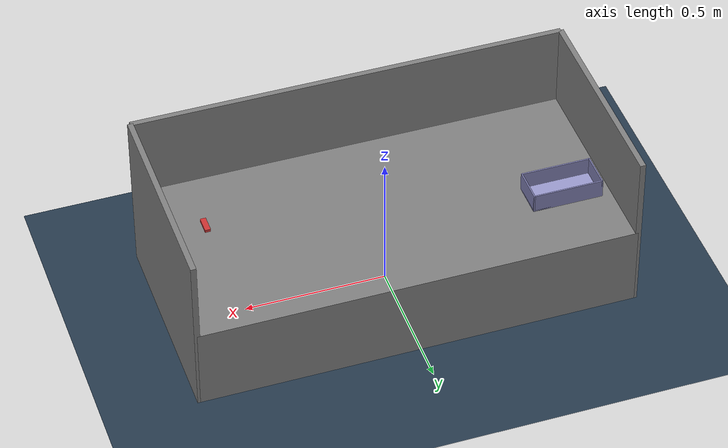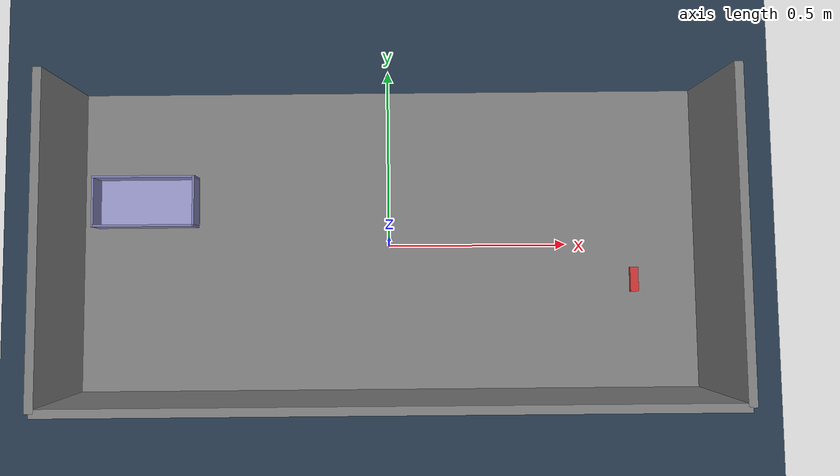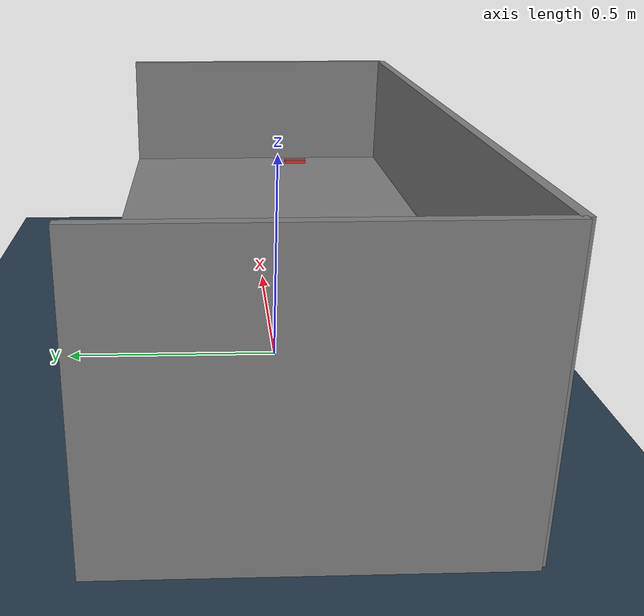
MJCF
<mujoco>
    <compiler angle="radian" meshdir="assets" autolimits="true" texturedir="assets" balanceinertia="true" />
    <option gravity="0 0 -9.81" />

    <visual>
        <headlight diffuse="0.6 0.6 0.6" ambient="0.1 0.1 0.1" specular="0 0 0" />
        <global azimuth="120" elevation="-20" />
    </visual>

    <asset>
        <texture name="grid" type="2d" builtin="checker" rgb1=".2 .3 .4" rgb2=".1 0.15 0.2"
            width="512"
            height="512"
            mark="cross" markrgb=".8 .8 .8" />
        <material name="grid" texture="grid" texrepeat="1 1" texuniform="true" />
    </asset>

    <worldbody>
        <light pos="0 0 1.5" directional="true" />
        <geom name="floor" size="10 10 0.01" type="plane" material="grid" />

        <body name="environment" pos="0 0 0.15">
            <geom name="table" type="box" size="0.77 0.375 0.15"
                rgba="0.5 0.5 0.5 1" contype="1" conaffinity="1" group="1" condim="3" />
            <geom name="wall1" type="box" size="0.77 0.01 0.3" pos="0 -.375 0.15"
                rgba="0.5 0.5 0.5 1" group="1" conaffinity="1" contype="1" />
            <geom name="wall2" type="box" size="0.01 0.375 0.3" pos=".77 0 0.15"
                rgba="0.5 0.5 0.5 1" group="1" conaffinity="1" contype="1" />
            <geom name="wall3" type="box" size="0.01 0.375 0.3" pos="-.77 0 0.15"
                rgba="0.5 0.5 0.5 1" group="1" conaffinity="1" contype="1" />
        </body>
        <body name="open_box_body" pos="-0.6 0.1 0.3">
            <geom name="open_box_bottom" type="box"
                size="0.125 0.0625 0.0025" pos="0 0 0.0025" rgba="0.6 0.6 0.8 1" />

            <geom name="open_box_front_wall" type="box"
                size="0.125 0.0025 0.03375" pos="0 0.060 0.03375" rgba="0.5 0.5 0.7 1" />

            <geom name="open_box_back_wall" type="box"
                size="0.125 0.0025 0.03375" pos="0 -0.060 0.03375" rgba="0.5 0.5 0.7 1" />

            <geom name="open_box_right_wall" type="box"
                size="0.0025 0.0625 0.03375" pos="0.1225 0 0.03375" rgba="0.5 0.5 0.7 1" />

            <geom name="open_box_left_wall" type="box"
                size="0.0025 0.0625 0.03375" pos="-0.1225 0 0.03375" rgba="0.5 0.5 0.7 1" />
        </body>
        <body name="shark_body" pos="0.6 -0.1 0.33" quat="0.707 0 0 0.707">
            <inertial mass="0.5" pos="0 0 0" diaginertia="0.00001042 0.000077083 0.00083" />
            <freejoint />
            <geom type="box" contype="1" conaffinity="1" condim="3" size="0.03 0.01 0.005"
                pos="0 0 0" rgba=".8 .2 .2 1" friction="1 0.005 0.0001" />
        </body>
    </worldbody>
</mujoco>
